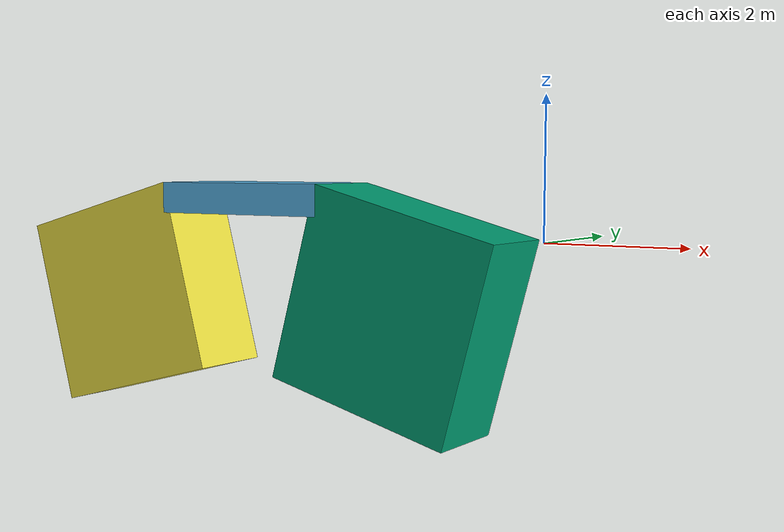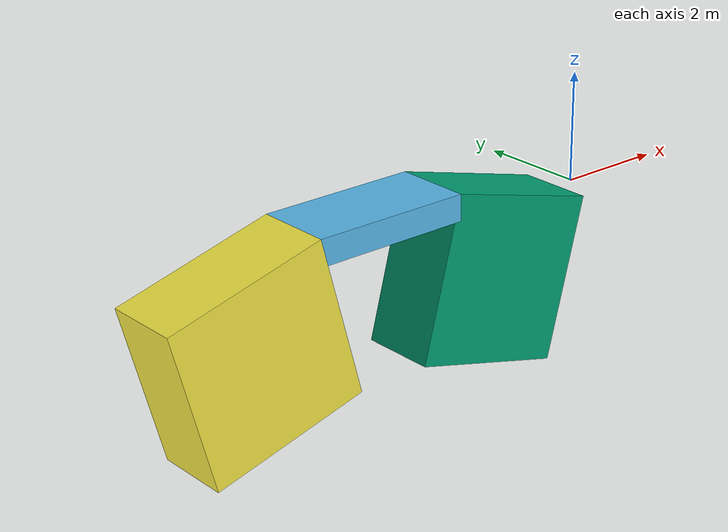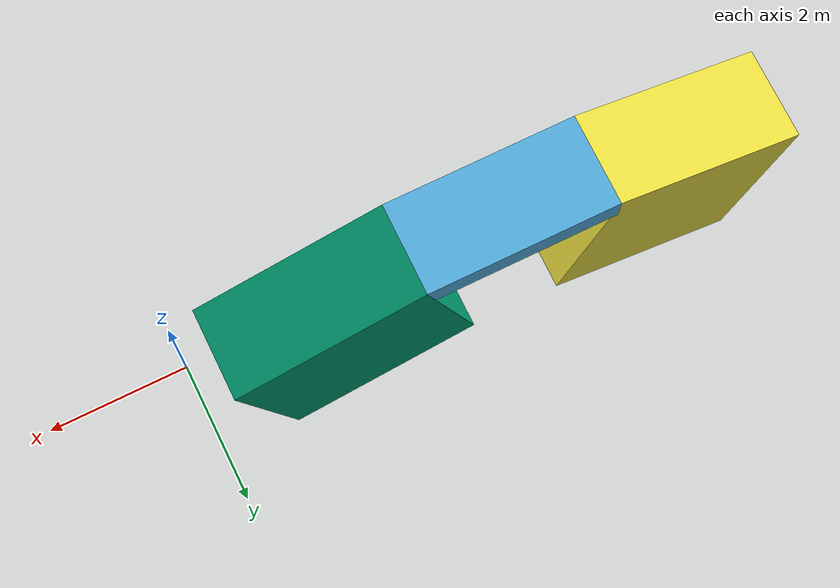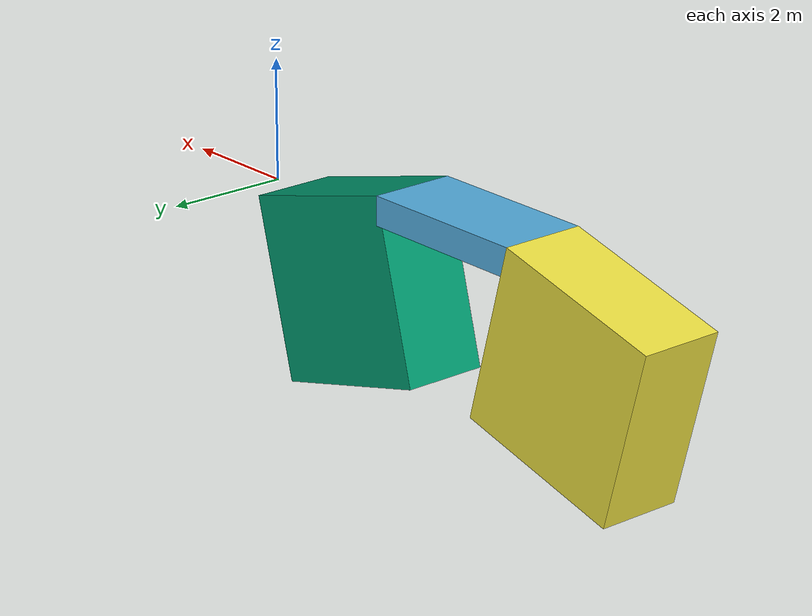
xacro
<?xml version="1.0"?>
<robot name="ramp_and_door" xmlns:xacro="http://www.ros.org/wiki/xacro">
    <gazebo>
        <static>true</static>
    </gazebo>

    <!-- Sizes from the rules of the cybathlon 2020 -->
    <xacro:property name="platform_height" default="0.48"/>
    <xacro:property name="platform_length" default="2.920"/>
    <xacro:property name="platform_width" default="1.4"/>
    <xacro:property name="ramp_up_length" default="3.0"/>
    <xacro:property name="distance_to_origin" default="0.4"/>
    <xacro:property name="ramp_up_slope" default="${radians(15)}"/>
    <xacro:property name="ramp_down_slope" value="${radians(15)}"/>
    <xacro:property name="ramp_down_length" default="${sin(ramp_up_slope) * ramp_up_length / sin(ramp_down_slope)}"/>

    <xacro:property name="parent_name" value="world"/>
    <xacro:property name="mu1" value="1.0"/>
    <xacro:property name="mu2" value="1.0"/>
    <!-- Minimum allowable depth before contact correction impulse is applied. -->
    <xacro:property name="min_depth" value="0.0005"/>

    <!-- Used for fixing robot to Gazebo 'base_link' -->
    <link name="${parent_name}"/>

    <!-- Links -->
    <link name="platform">
        <collision>
          <geometry>
            <box size="${platform_length} ${platform_width} ${platform_height}" />
          </geometry>
        </collision>

        <visual name='visual'>
          <geometry>
            <box size="${platform_length} ${platform_width} ${platform_height}" />
          </geometry>
        </visual>
        <inertial>
            <origin xyz="0 0 0" rpy="0 0 0"/>
            <mass value="1"/>
            <inertia
                    ixx="1"
                    ixy="1"
                    ixz="1"
                    iyy="1"
                    iyz="1"
                    izz="1" />
        </inertial>
    </link>

    <link name="ramp_up">
        <collision>
          <origin xyz="0 0 0" rpy="0 0 0"/>
          <geometry>
            <box size="${ramp_up_length} ${platform_width} ${ramp_up_length}" />
          </geometry>
        </collision>

        <visual name='visual'>
          <origin xyz="0 0 0" rpy="0 0 0"/>
          <geometry>
            <box size="${ramp_up_length} ${platform_width} ${ramp_up_length}" />
          </geometry>
        </visual>
    </link>

    <link name="ramp_down">
        <collision>
          <origin xyz="0 0 0" rpy="0 0 0"/>
          <geometry>
            <box size="${ramp_down_length} ${platform_width} ${ramp_down_length}" />
          </geometry>
        </collision>

        <visual name='visual'>
          <origin xyz="0 0 0" rpy="0 0 0"/>
          <geometry>
            <box size="${ramp_down_length} ${platform_width} ${ramp_down_length}" />
          </geometry>
        </visual>
    </link>

    <gazebo reference="platform">
        <mu1>${mu1}</mu1>
        <mu2>${mu2}</mu2>
        <minDepth>${min_depth}</minDepth>
    </gazebo>

    <gazebo reference="ramp_up">
        <mu1>${mu1}</mu1>
        <mu2>${mu2}</mu2>
        <minDepth>${min_depth}</minDepth>
    </gazebo>

    <gazebo reference="ramp_down">
        <mu1>${mu1}</mu1>
        <mu2>${mu2}</mu2>
        <minDepth>${min_depth}</minDepth>
    </gazebo>

    <!-- Joints -->

    <joint name="joint_0" type="fixed"> <!-- Ensure the ramp up side just above ground, and 0.4 m away from origin -->
        <parent link="${parent_name}"/>
        <child link="ramp_up"/>
        <origin xyz="${-1 * cos(radians(45) - ramp_up_slope) * ramp_up_length / sqrt(2) - distance_to_origin} 0
                     ${-1 * sin(radians(45) - ramp_up_slope) * ramp_up_length / sqrt(2)}" rpy="0 ${ramp_up_slope} 0"/>
    </joint>

    <joint name="joint_1" type="fixed"> <!-- Let platform be straight, and smoothly connect it to the ramp up -->
        <parent link="ramp_up"/>
        <child link="platform"/>
        <origin xyz="${-1 * ramp_up_length / 2 - cos(ramp_up_slope) * platform_length / 2 + sin(ramp_up_slope) * platform_height / 2} 0
        ${ramp_up_length / 2 - sin(ramp_up_slope) * platform_length / 2 - cos(ramp_up_slope) * platform_height / 2}" rpy="0 ${-1 * ramp_up_slope} 0"/>
    </joint>

    <joint name="joint_2" type="fixed">
        <parent link="platform"/>
        <child link="ramp_down"/>
        <origin xyz="${-1 * platform_length / 2 - cos(radians(45) + ramp_down_slope) * ramp_down_length / sqrt(2)} 0
        ${platform_height / 2 - sin(radians(45) + ramp_down_slope) * ramp_down_length / sqrt(2)}" rpy="0 ${-1 * ramp_down_slope} 0"/>
    </joint>

</robot>
